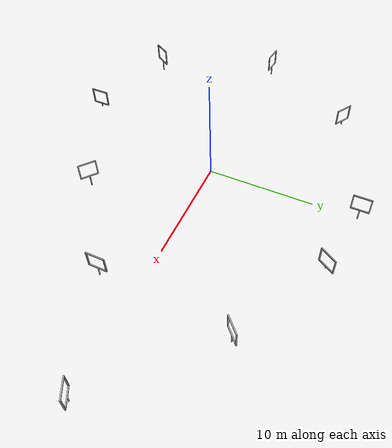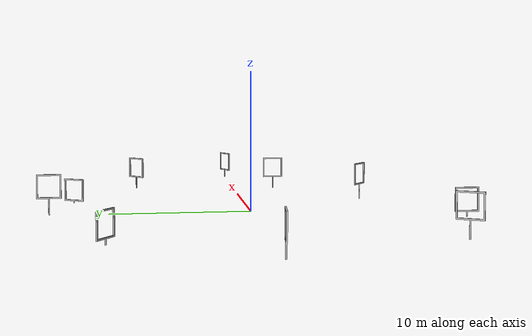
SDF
<?xml version="1.0"?>
<sdf version="1.5">
    <model name="frame">
        <static>true</static>
        <link name="link">
            <collision name="collision1">
                <pose>0 14.1 0 0 0 3.14</pose>
                <geometry>
                    <mesh>
                        <uri>model://frame/meshes/frame_2.stl</uri>
                    </mesh>
                </geometry>
            </collision>
            <visual name="visual1">

              <pose>0 14.1 0 0 0 3.14</pose>
              <geometry>
              <mesh>
                 <uri>model://frame/meshes/frame_2.dae</uri>
              </mesh>
              </geometry>

              <material>
                  <script>
                      <uri>model://frame/materials/scripts</uri>
                      <uri>model://frame/materials/textures</uri>
                      <name>frameMat/Diffuse</name>
                  </script>
              </material>
             </visual>

             <collision name="collision2">
                <pose>-11.5 9.5 0 0 0 23</pose>
                <geometry>
                    <mesh>
                        <uri>model://frame/meshes/frame_1_2.stl</uri>
                    </mesh>
                </geometry>
            </collision>
            <visual name="visual2">

              <pose>-11.5 9.5 0 0 0 23</pose>
              <geometry>
              <mesh>
                 <uri>model://frame/meshes/frame_1_2.dae</uri>
              </mesh>
              </geometry>

              <material>
                  <script>
                      <uri>model://frame/materials/scripts</uri>
                      <uri>model://frame/materials/textures</uri>
                      <name>frameMat/Diffuse</name>
                  </script>
              </material>
             </visual>

             <collision name="collision3">
                <pose>-4 -14.5 0 0 0 0</pose>
                <geometry>
                    <mesh>
                        <uri>model://frame/meshes/frame_1_2.stl</uri>
                    </mesh>
                </geometry>
            </collision>
            <visual name="visual3">

              <pose>-4 -14.5 0 0 0 0</pose>
              <geometry>
              <mesh>
                 <uri>model://frame/meshes/frame_1_2.dae</uri>
              </mesh>
              </geometry>

              <material>
                  <script>
                      <uri>model://frame/materials/scripts</uri>
                      <uri>model://frame/materials/textures</uri>
                      <name>frameMat/Diffuse</name>
                  </script>
              </material>
             </visual>

             <collision name="collision4">
                <pose>-12.3 -11.5 0 0 0 100</pose>
                <geometry>
                    <mesh>
                        <uri>model://frame/meshes/frame_2.stl</uri>
                    </mesh>
                </geometry>
            </collision>
            <visual name="visual4">

              <pose>-12.3 -11.5 0 0 0 100</pose>
              <geometry>
              <mesh>
                 <uri>model://frame/meshes/frame_2.dae</uri>
              </mesh>
              </geometry>

              <material>
                  <script>
                      <uri>model://frame/materials/scripts</uri>
                      <uri>model://frame/materials/textures</uri>
                      <name>frameMat/Diffuse</name>
                  </script>
              </material>
             </visual>

             <collision name="collision5">
                <pose>-16.5 0 0 0 0 80</pose>
                <geometry>
                    <mesh>
                        <uri>model://frame/meshes/frame_1_8.stl</uri>
                    </mesh>
                </geometry>
            </collision>
            <visual name="visual5">

              <pose>-16.5 0 0 0 0 80</pose>
              <geometry>
              <mesh>
                 <uri>model://frame/meshes/frame_1_8.dae</uri>
              </mesh>
              </geometry>

              <material>
                  <script>
                      <uri>model://frame/materials/scripts</uri>
                      <uri>model://frame/materials/textures</uri>
                      <name>frameMat/Diffuse</name>
                  </script>
              </material>
             </visual>

             <collision name="collision6">
                <pose>6 -9.4 0 0 0 70</pose>
                <geometry>
                    <mesh>
                        <uri>model://frame/meshes/frame_2.stl</uri>
                    </mesh>
                </geometry>
            </collision>
            <visual name="visual6">

              <pose>6 -9.4 0 0 0 70</pose>
              <geometry>
              <mesh>
                 <uri>model://frame/meshes/frame_2.dae</uri>
              </mesh>
              </geometry>

              <material>
                  <script>
                      <uri>model://frame/materials/scripts</uri>
                      <uri>model://frame/materials/textures</uri>
                      <name>frameMat/Diffuse</name>
                  </script>
              </material>
             </visual>

             <collision name="collision7">
                <pose>14 -3.5 0 0 0 0</pose>
                <geometry>
                    <mesh>
                        <uri>model://frame/meshes/frame_1_8.stl</uri>
                    </mesh>
                </geometry>
            </collision>
            <visual name="visual7">

              <pose>14 -3.5 0 0 0 0</pose>
              <geometry>
              <mesh>
                 <uri>model://frame/meshes/frame_1_8.dae</uri>
              </mesh>
              </geometry>

              <material>
                  <script>
                      <uri>model://frame/materials/scripts</uri>
                      <uri>model://frame/materials/textures</uri>
                      <name>frameMat/Diffuse</name>
                  </script>
              </material>
             </visual>

             <collision name="collision8">
                <pose>23.5 0 0 0 0 90</pose>
                <geometry>
                    <mesh>
                        <uri>model://frame/meshes/frame_1_5.stl</uri>
                    </mesh>
                </geometry>
            </collision>
            <visual name="visual8">

              <pose>23.5 0 0 0 0 90</pose>
              <geometry>
              <mesh>
                 <uri>model://frame/meshes/frame_1_5.dae</uri>
              </mesh>
              </geometry>

              <material>
                  <script>
                      <uri>model://frame/materials/scripts</uri>
                      <uri>model://frame/materials/textures</uri>
                      <name>frameMat/Diffuse</name>
                  </script>
              </material>
             </visual>

             <collision name="collision9">
                <pose>15 8.5 0 0 0 2.35</pose>
                <geometry>
                    <mesh>
                        <uri>model://frame/meshes/frame_1_8.stl</uri>
                    </mesh>
                </geometry>
            </collision>
            <visual name="visual9">

              <pose>15 8.5 0 0 0 2.35</pose>
              <geometry>
              <mesh>
                 <uri>model://frame/meshes/frame_1_8.dae</uri>
              </mesh>
              </geometry>

              <material>
                  <script>
                      <uri>model://frame/materials/scripts</uri>
                      <uri>model://frame/materials/textures</uri>
                      <name>frameMat/Diffuse</name>
                  </script>
              </material>
             </visual>

             <collision name="collision10">
                <pose>6 13 0 0 0 2.61</pose>
                <geometry>
                    <mesh>
                        <uri>model://frame/meshes/frame_1.stl</uri>
                    </mesh>
                </geometry>
            </collision>
            <visual name="visual10">

              <pose>6 13 0 0 0 2.61</pose>
              <geometry>
              <mesh>
                 <uri>model://frame/meshes/frame_1.dae</uri>
              </mesh>
              </geometry>

              <material>
                  <script>
                      <uri>model://frame/materials/scripts</uri>
                      <uri>model://frame/materials/textures</uri>
                      <name>frameMat/Diffuse</name>
                  </script>
              </material>
             </visual>

        </link>
    </model>
</sdf>
